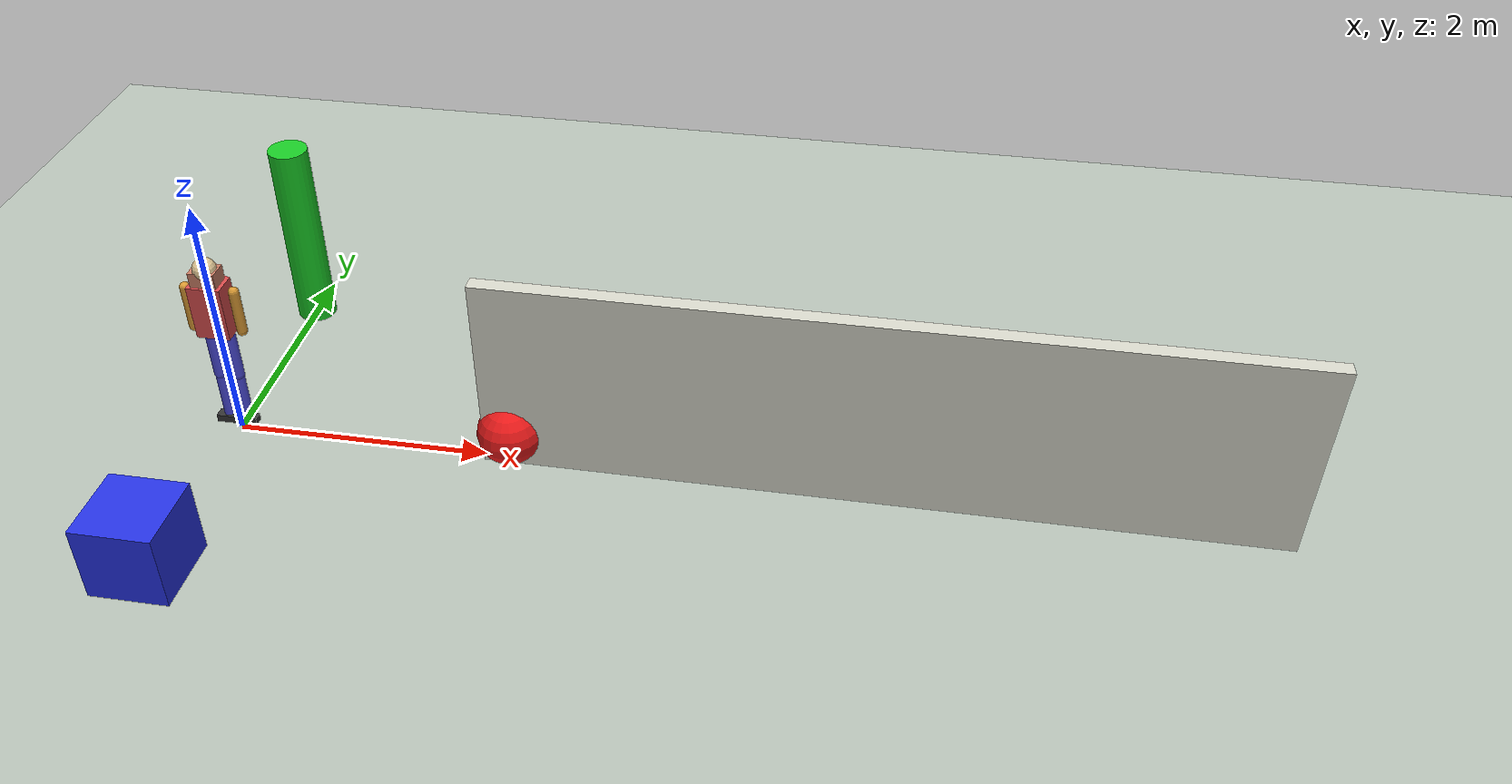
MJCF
<mujoco model="小人">
  <compiler angle="radian"/>
  <option timestep="0.005" integrator="RK4"/>
  <visual><global offwidth="640" offheight="480"/><headlight ambient=".45 .45 .45" diffuse=".6 .6 .6"/></visual>
  <worldbody>
    <light pos="0 0 5" dir="0 0 -1" diffuse=".7 .7 .7"/>
    <geom name="地" type="box" size="12 12 .05" pos="0 0 -.05" rgba=".72 .76 .72 1" condim="1"/>
    <geom name="红球" type="sphere" size=".25" pos="2.2 0 .25" rgba=".9 .1 .1 1"/>
    <geom name="绿柱" type="cylinder" size=".16 .8" pos="0 1.6 .8" rgba=".1 .8 .15 1"/>
    <geom name="蓝箱" type="box" size=".3 .3 .3" pos="0 -1.6 .3" rgba=".15 .2 .9 1"/>
    <geom name="墙" type="box" size="3 .06 .8" pos="5 0 .8" rgba=".85 .85 .8 1"/>

    <body name="躯干" pos="0 0 1.15">
      <freejoint/>
      <geom type="box" size=".13 .10 .22" rgba=".85 .3 .3 1"/>
      <body name="腰" pos="0 0 .22">
        <joint name="转腰" type="hinge" axis="0 0 1" range="-1.2 1.2"/>
        <geom type="box" size=".10 .08 .06" pos="0 0 .06" rgba=".8 .5 .4 1"/>
        <body name="头" pos="0 0 .12">
          <joint name="转颈" type="hinge" axis="0 0 1" range="-1.0 1.0"/>
          <geom type="sphere" size=".09" rgba=".9 .8 .6 1"/>
          <camera name="眼" pos=".10 0 .02" xyaxes="0 -1 0 0 0 1" fovy="75"/>
        </body>
      </body>
      <body name="左大腿" pos=".07 0 -.22">
        <joint name="左髋" type="hinge" axis="0 1 0" range="-1.6 1.6"/>
        <geom type="capsule" fromto="0 0 0 0 0 -.4" size=".05" rgba=".3 .3 .85 1"/>
        <body name="左小腿" pos="0 0 -.4">
          <joint name="左膝" type="hinge" axis="0 1 0" range="-2.2 0.1"/>
          <geom type="capsule" fromto="0 0 0 0 0 -.4" size=".045" rgba=".3 .3 .85 1"/>
          <body name="左脚" pos="0 0 -.4">
            <joint name="左踝" type="hinge" axis="0 1 0" range="-0.8 0.8"/>
            <geom type="box" size=".09 .04 .03" pos="0 -.02 -.02" rgba=".2 .2 .2 1"/>
          </body>
        </body>
      </body>
      <body name="右大腿" pos="-.07 0 -.22">
        <joint name="右髋" type="hinge" axis="0 1 0" range="-1.6 1.6"/>
        <geom type="capsule" fromto="0 0 0 0 0 -.4" size=".05" rgba=".3 .3 .85 1"/>
        <body name="右小腿" pos="0 0 -.4">
          <joint name="右膝" type="hinge" axis="0 1 0" range="-2.2 0.1"/>
          <geom type="capsule" fromto="0 0 0 0 0 -.4" size=".045" rgba=".3 .3 .85 1"/>
          <body name="右脚" pos="0 0 -.4">
            <joint name="右踝" type="hinge" axis="0 1 0" range="-0.8 0.8"/>
            <geom type="box" size=".09 .04 .03" pos="0 -.02 -.02" rgba=".2 .2 .2 1"/>
          </body>
        </body>
      </body>
      <body name="左臂" pos=".19 0 .16">
        <joint name="左肩" type="hinge" axis="0 1 0" range="-2.0 2.0"/>
        <geom type="capsule" fromto="0 0 0 0 0 -.35" size=".04" rgba=".85 .6 .2 1"/>
      </body>
      <body name="右臂" pos="-.19 0 .16">
        <joint name="右肩" type="hinge" axis="0 1 0" range="-2.0 2.0"/>
        <geom type="capsule" fromto="0 0 0 0 0 -.35" size=".04" rgba=".85 .6 .2 1"/>
      </body>
    </body>
  </worldbody>
  <actuator>
    <motor name="左髋" joint="左髋" gear="60" ctrlrange="-1 1"/>
    <motor name="左膝" joint="左膝" gear="60" ctrlrange="-1 1"/>
    <motor name="左踝" joint="左踝" gear="30" ctrlrange="-1 1"/>
    <motor name="右髋" joint="右髋" gear="60" ctrlrange="-1 1"/>
    <motor name="右膝" joint="右膝" gear="60" ctrlrange="-1 1"/>
    <motor name="右踝" joint="右踝" gear="30" ctrlrange="-1 1"/>
    <motor name="左肩" joint="左肩" gear="25" ctrlrange="-1 1"/>
    <motor name="右肩" joint="右肩" gear="25" ctrlrange="-1 1"/>
    <motor name="转腰" joint="转腰" gear="25" ctrlrange="-1 1"/>
    <motor name="转颈" joint="转颈" gear="15" ctrlrange="-1 1"/>
  </actuator>
</mujoco>
